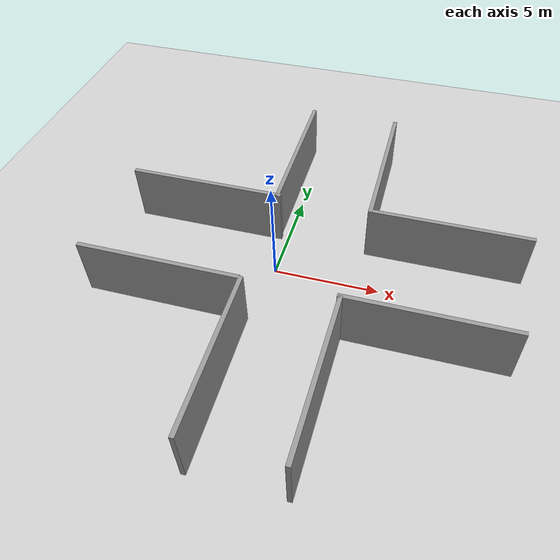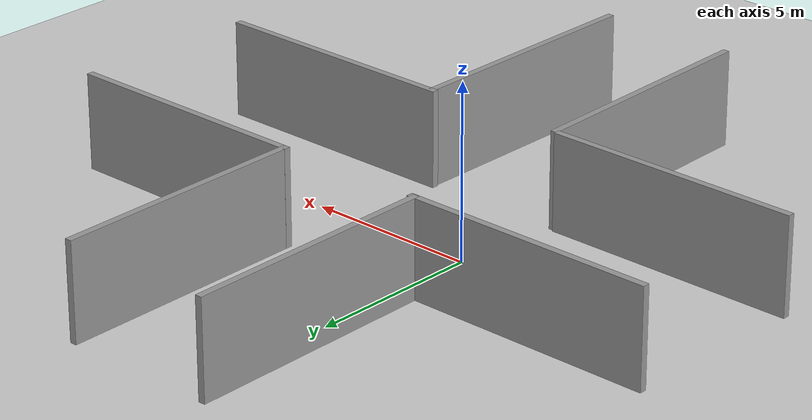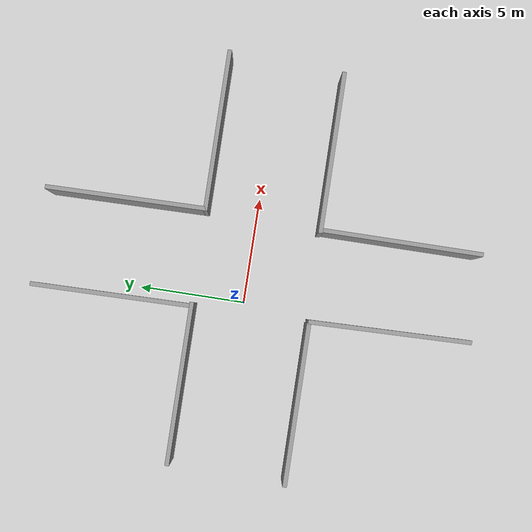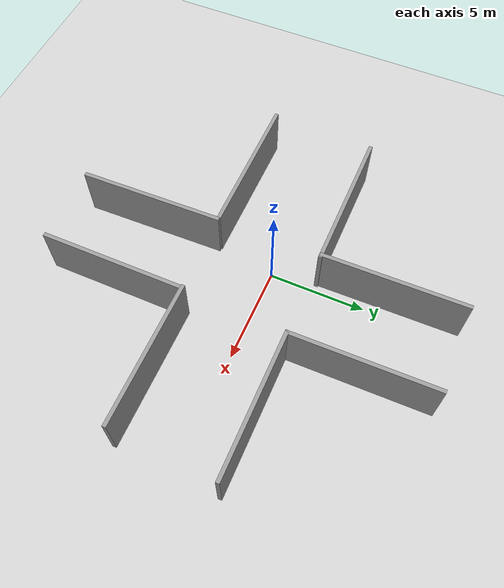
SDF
<sdf version="1.6">
 <world name="default">
  <light name="sun" type="directional">
   <pose>0 0 10 0 -0 0</pose>
   <diffuse>0.8 0.8 0.8 1</diffuse>
   <specular>0.2 0.2 0.2 1</specular>
   <attenuation>
    <range>1000</range>
    <constant>0.9</constant>
    <linear>0.01</linear>
    <quadratic>0.001</quadratic>
   </attenuation>
   <direction>-0.5 0.1 -0.9</direction>
  </light>
  <model name="ground_plane">
   <static>1</static>
   <link name="link">
    <collision name="collision">
     <geometry><plane><normal>0 0 1</normal><size>100 100</size></plane></geometry>
     <surface><friction><ode><mu>100</mu><mu2>50</mu2></ode></friction></surface>
    </collision>
    <visual name="visual">
     <cast_shadows>0</cast_shadows>
     <geometry><plane><normal>0 0 1</normal><size>100 100</size></plane></geometry>
     <material>
      <script><uri>file://media/materials/scripts/gazebo.material</uri><name>Gazebo/Grey</name></script>
     </material>
    </visual>
   </link>
  </model>
  <gravity>0 0 -9.8</gravity>
  <magnetic_field>6e-06 2.3e-05 -4.2e-05</magnetic_field>
  <atmosphere type="adiabatic"/>
  <physics name="default_physics" default="0" type="ode">
   <max_step_size>0.001</max_step_size>
   <real_time_factor>1</real_time_factor>
   <real_time_update_rate>1000</real_time_update_rate>
  </physics>
  <scene><ambient>0.4 0.4 0.4 1</ambient><background>0.7 0.7 0.7 1</background><shadows>1</shadows></scene>
  <spherical_coordinates>
   <surface_model>EARTH_WGS84</surface_model>
   <latitude_deg>0</latitude_deg>
   <longitude_deg>0</longitude_deg>
   <elevation>0</elevation>
   <heading_deg>0</heading_deg>
  </spherical_coordinates>
  <model name="grey_wall">
   <static>1</static>
   <link name="link">
    <pose>0 0 1.4 0 -0 0</pose>
    <collision name="collision"><geometry><box><size>7.5 0.2 2.8</size></box></geometry></collision>
    <visual name="visual">
     <cast_shadows>0</cast_shadows>
     <geometry><box><size>7.5 0.2 2.8</size></box></geometry>
     <material>
      <script>
       <uri>model://grey_wall/materials/scripts</uri>
       <uri>model://grey_wall/materials/textures</uri>
       <name>vrc/grey_wall</name>
      </script>
     </material>
    </visual>
   </link>
   <pose>-4.23621 -3.09696 0 0 -0 0</pose>
  </model>
  <model name="grey_wall_0">
   <static>1</static>
   <link name="link">
    <pose>0 0 1.4 0 -0 0</pose>
    <collision name="collision"><geometry><box><size>7.5 0.2 2.8</size></box></geometry></collision>
    <visual name="visual">
     <cast_shadows>0</cast_shadows>
     <geometry><box><size>7.5 0.2 2.8</size></box></geometry>
     <material>
      <script>
       <uri>model://grey_wall/materials/scripts</uri>
       <uri>model://grey_wall/materials/textures</uri>
       <name>vrc/grey_wall</name>
      </script>
     </material>
    </visual>
   </link>
   <pose>-4.08766 2.3237 0 0 -0 0</pose>
  </model>
  <model name="grey_wall_clone">
   <static>1</static>
   <link name="link">
    <pose>0 0 1.4 0 -0 0</pose>
    <collision name="collision"><geometry><box><size>7.5 0.2 2.8</size></box></geometry></collision>
    <visual name="visual">
     <cast_shadows>0</cast_shadows>
     <geometry><box><size>7.5 0.2 2.8</size></box></geometry>
     <material>
      <script>
       <uri>model://grey_wall/materials/scripts</uri>
       <uri>model://grey_wall/materials/textures</uri>
       <name>vrc/grey_wall</name>
      </script>
     </material>
    </visual>
   </link>
   <pose>7.62251 2.36272 0 0 -0 0</pose>
  </model>
  <model name="grey_wall_clone_clone">
   <static>1</static>
   <link name="link">
    <pose>0 0 1.4 0 -0 0</pose>
    <collision name="collision"><geometry><box><size>7.5 0.2 2.8</size></box></geometry></collision>
    <visual name="visual">
     <cast_shadows>0</cast_shadows>
     <geometry><box><size>7.5 0.2 2.8</size></box></geometry>
     <material>
      <script>
       <uri>model://grey_wall/materials/scripts</uri>
       <uri>model://grey_wall/materials/textures</uri>
       <name>vrc/grey_wall</name>
      </script>
     </material>
    </visual>
   </link>
   <pose>7.40322 -2.99971 0 0 -0 0</pose>
  </model>
  <model name="grey_wall_clone_clone_clone">
   <static>1</static>
   <link name="link">
    <pose>0 0 1.4 0 -0 0</pose>
    <collision name="collision"><geometry><box><size>7.5 0.2 2.8</size></box></geometry></collision>
    <visual name="visual">
     <cast_shadows>0</cast_shadows>
     <geometry><box><size>7.5 0.2 2.8</size></box></geometry>
     <material>
      <script>
       <uri>model://grey_wall/materials/scripts</uri>
       <uri>model://grey_wall/materials/textures</uri>
       <name>vrc/grey_wall</name>
      </script>
     </material>
    </visual>
   </link>
   <pose>-0.342361 -6.79895 0 0 0 -1.54779</pose>
  </model>
  <model name="grey_wall_clone_clone_clone_0">
   <static>1</static>
   <link name="link">
    <pose>0 0 1.4 0 -0 0</pose>
    <collision name="collision"><geometry><box><size>7.5 0.2 2.8</size></box></geometry></collision>
    <visual name="visual">
     <cast_shadows>0</cast_shadows>
     <geometry><box><size>7.5 0.2 2.8</size></box></geometry>
     <material>
      <script>
       <uri>model://grey_wall/materials/scripts</uri>
       <uri>model://grey_wall/materials/textures</uri>
       <name>vrc/grey_wall</name>
      </script>
     </material>
    </visual>
   </link>
   <pose>3.79609 -6.75021 0 0 0 -1.57157</pose>
  </model>
  <model name="grey_wall_clone_clone_clone_1">
   <static>1</static>
   <link name="link">
    <pose>0 0 1.4 0 -0 0</pose>
    <collision name="collision"><geometry><box><size>7.5 0.2 2.8</size></box></geometry></collision>
    <visual name="visual">
     <cast_shadows>0</cast_shadows>
     <geometry><box><size>7.5 0.2 2.8</size></box></geometry>
     <material>
      <script>
       <uri>model://grey_wall/materials/scripts</uri>
       <uri>model://grey_wall/materials/textures</uri>
       <name>vrc/grey_wall</name>
      </script>
     </material>
    </visual>
   </link>
   <pose>-0.557804 6.00447 0 0 0 -1.55775</pose>
  </model>
  <model name="grey_wall_clone_clone_clone_1_clone">
   <static>1</static>
   <link name="link">
    <pose>0 0 1.4 0 -0 0</pose>
    <collision name="collision"><geometry><box><size>7.5 0.2 2.8</size></box></geometry></collision>
    <visual name="visual">
     <cast_shadows>0</cast_shadows>
     <geometry><box><size>7.5 0.2 2.8</size></box></geometry>
     <material>
      <script>
       <uri>model://grey_wall/materials/scripts</uri>
       <uri>model://grey_wall/materials/textures</uri>
       <name>vrc/grey_wall</name>
      </script>
     </material>
    </visual>
   </link>
   <pose>3.92706 6.02039 0 0 0 -1.55775</pose>
  </model>
 </world>
</sdf>
